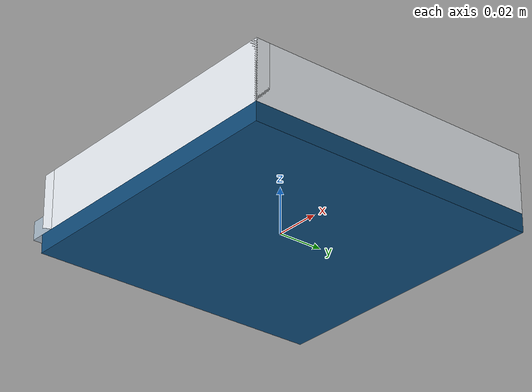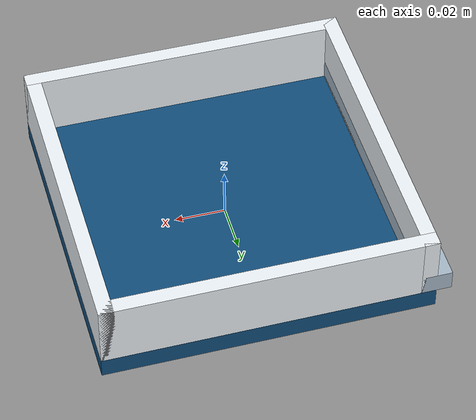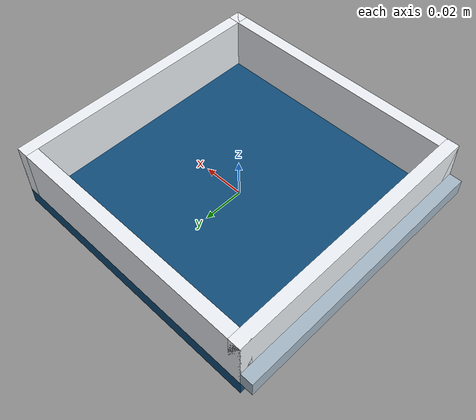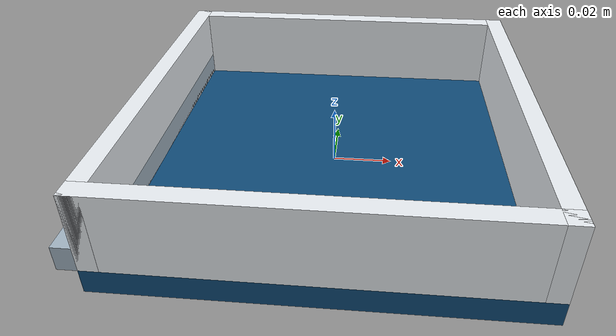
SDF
<?xml version='1.0' encoding='utf-8'?>
<sdf version="1.9">
  <model name="carrier">
    <static>false</static>
    <self_collide>true</self_collide>
    <link name="body">
      <pose>0 0 0 0 0 0</pose>
      <inertial>
        <mass>0.09</mass>
        <inertia>
          <ixx>0.00013143750000000002</ixx>
          <iyy>0.00013143750000000002</iyy>
          <izz>0.00025350000000000004</izz>
          <ixy>0</ixy>
          <ixz>0</ixz>
          <iyz>0</iyz>
        </inertia>
      </inertial>
      <visual name="base">
        <pose>0 0 0 0 0 0</pose>
        <geometry>
          <box>
            <size>0.13 0.13 0.008</size>
          </box>
        </geometry>
        <material>
          <ambient>0.06 0.30 0.48 1</ambient>
          <diffuse>0.06 0.30 0.48 1</diffuse>
        </material>
      </visual>
      <collision name="base_collision">
        <pose>0 0 0 0 0 0</pose>
        <geometry>
          <box>
            <size>0.13 0.13 0.008</size>
          </box>
        </geometry>
        <surface>
          <friction>
            <ode>
              <mu>0.9</mu>
              <mu2>0.9</mu2>
            </ode>
          </friction>
        </surface>
      </collision>
      <visual name="rim_0_-1">
        <pose>-0.062 0 0.017 0 0 0</pose>
        <geometry>
          <box>
            <size>0.006 0.13 0.026</size>
          </box>
        </geometry>
        <material>
          <ambient>0.93 0.95 0.97 1</ambient>
          <diffuse>0.93 0.95 0.97 1</diffuse>
        </material>
      </visual>
      <collision name="rim_0_-1_collision">
        <pose>-0.062 0 0.017 0 0 0</pose>
        <geometry>
          <box>
            <size>0.006 0.13 0.026</size>
          </box>
        </geometry>
        <surface>
          <friction>
            <ode>
              <mu>0.9</mu>
              <mu2>0.9</mu2>
            </ode>
          </friction>
        </surface>
      </collision>
      <visual name="rim_0_1">
        <pose>0.062 0 0.017 0 0 0</pose>
        <geometry>
          <box>
            <size>0.006 0.13 0.026</size>
          </box>
        </geometry>
        <material>
          <ambient>0.93 0.95 0.97 1</ambient>
          <diffuse>0.93 0.95 0.97 1</diffuse>
        </material>
      </visual>
      <collision name="rim_0_1_collision">
        <pose>0.062 0 0.017 0 0 0</pose>
        <geometry>
          <box>
            <size>0.006 0.13 0.026</size>
          </box>
        </geometry>
        <surface>
          <friction>
            <ode>
              <mu>0.9</mu>
              <mu2>0.9</mu2>
            </ode>
          </friction>
        </surface>
      </collision>
      <visual name="rim_1_-1">
        <pose>0 -0.062 0.017 0 0 0</pose>
        <geometry>
          <box>
            <size>0.13 0.006 0.026</size>
          </box>
        </geometry>
        <material>
          <ambient>0.93 0.95 0.97 1</ambient>
          <diffuse>0.93 0.95 0.97 1</diffuse>
        </material>
      </visual>
      <collision name="rim_1_-1_collision">
        <pose>0 -0.062 0.017 0 0 0</pose>
        <geometry>
          <box>
            <size>0.13 0.006 0.026</size>
          </box>
        </geometry>
        <surface>
          <friction>
            <ode>
              <mu>0.9</mu>
              <mu2>0.9</mu2>
            </ode>
          </friction>
        </surface>
      </collision>
      <visual name="rim_1_1">
        <pose>0 0.062 0.017 0 0 0</pose>
        <geometry>
          <box>
            <size>0.13 0.006 0.026</size>
          </box>
        </geometry>
        <material>
          <ambient>0.93 0.95 0.97 1</ambient>
          <diffuse>0.93 0.95 0.97 1</diffuse>
        </material>
      </visual>
      <collision name="rim_1_1_collision">
        <pose>0 0.062 0.017 0 0 0</pose>
        <geometry>
          <box>
            <size>0.13 0.006 0.026</size>
          </box>
        </geometry>
        <surface>
          <friction>
            <ode>
              <mu>0.9</mu>
              <mu2>0.9</mu2>
            </ode>
          </friction>
        </surface>
      </collision>
      <visual name="hinge">
        <pose>-0.065 0 0.008 0 0 0</pose>
        <geometry>
          <box>
            <size>0.012 0.13 0.008</size>
          </box>
        </geometry>
        <material>
          <ambient>0.65 0.72 0.78 1</ambient>
          <diffuse>0.65 0.72 0.78 1</diffuse>
        </material>
      </visual>
      <collision name="hinge_collision">
        <pose>-0.065 0 0.008 0 0 0</pose>
        <geometry>
          <box>
            <size>0.012 0.13 0.008</size>
          </box>
        </geometry>
        <surface>
          <friction>
            <ode>
              <mu>0.9</mu>
              <mu2>0.9</mu2>
            </ode>
          </friction>
        </surface>
      </collision>
    </link>
    <plugin filename="gz-sim-pose-publisher-system" name="gz::sim::systems::PosePublisher">
      <publish_link_pose>false</publish_link_pose>
      <publish_model_pose>true</publish_model_pose>
      <publish_nested_model_pose>false</publish_nested_model_pose>
      <use_pose_vector_msg>false</use_pose_vector_msg>
      <update_frequency>30</update_frequency>
      <topic>/poses/carrier</topic>
    </plugin>
  </model>
</sdf>
